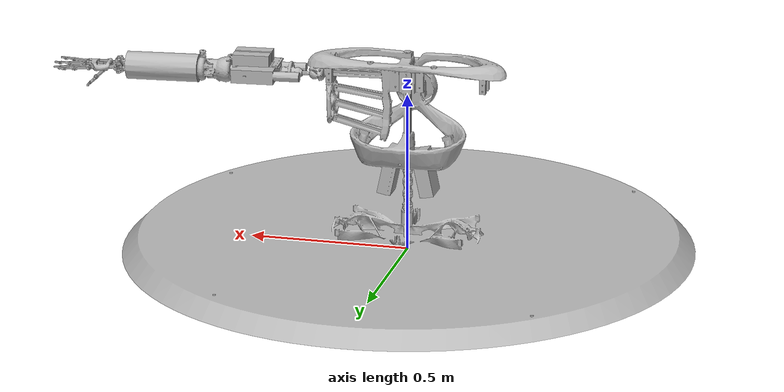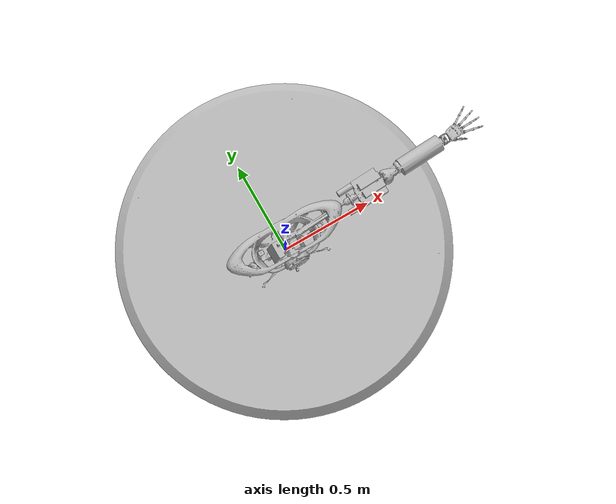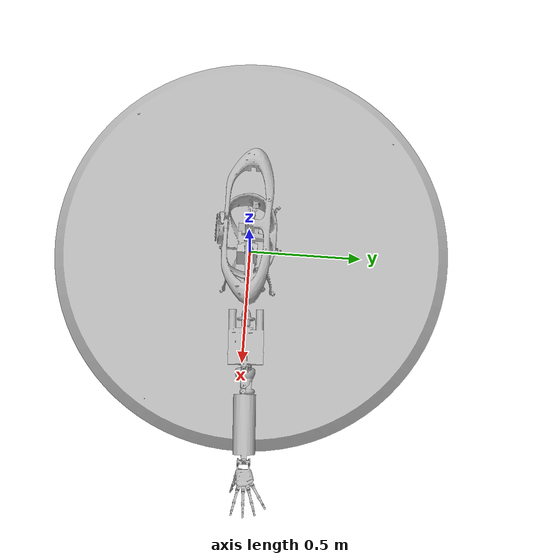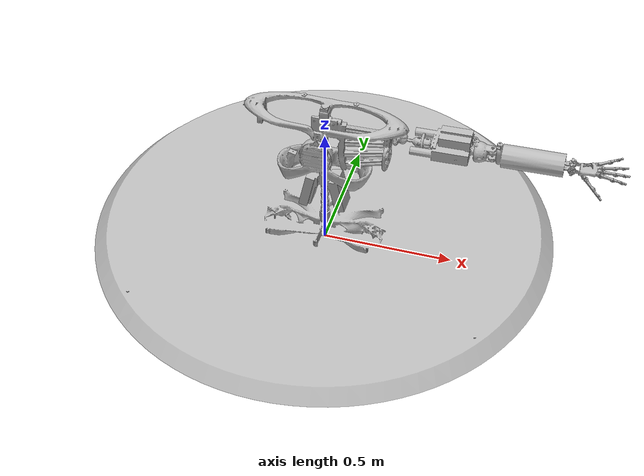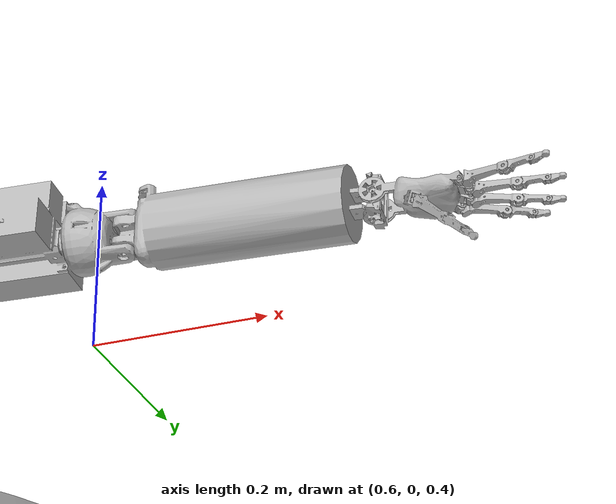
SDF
<?xml version="1.0" ?>
<sdf version="1.6">
	<model name="roboy_xylophone_left_arm">
		<link name="upper_arm_left">
			<self_collide>false</self_collide>
			<pose frame="">0.47525602631534186 0.01714193037585743 0.5581680840350569 0.0 -0.0 0.0</pose>
			<inertial>
				<pose frame="">0.0 0.0 0.0 0 0 0</pose>
				<mass>1.2824428697417236</mass>
				<inertia>
					<ixx>0.4024486697593224</ixx>
					<ixy>-0.010686402192530009</ixy>
					<ixz>-0.012264295959232901</ixz>
					<iyy>0.6959076882859703</iyy>
					<iyz>-0.3402753322906723</iyz>
					<izz>0.2979984162484978</izz>
				</inertia>
			</inertial>
			<collision name="upper_arm_left_collision">
				<geometry>
					<mesh>
						<uri>model://roboy_xylophone_left_arm/meshes/CAD/upper_arm_left.stl</uri>
						<scale>0.001 0.001 0.001</scale>
					</mesh>
				</geometry>
			</collision>
			<visual name="upper_arm_left_visual">
				<geometry>
					<mesh>
						<uri>model://roboy_xylophone_left_arm/meshes/CAD/upper_arm_left.stl</uri>
						<scale>0.001 0.001 0.001</scale>
					</mesh>
				</geometry>
			</visual>
		</link>
		<link name="torso">
			<self_collide>false</self_collide>
			<pose frame="">0.008583084223350608 -0.008164586655353396 0.39844861642463053 0.0 -0.0 0.0</pose>
			<inertial>
				<pose frame="">0.0 0.0 0.0 0 0 0</pose>
				<mass>17.35475770563241</mass>
				<inertia>
					<ixx>3.1867053233126024</ixx>
					<ixy>-0.0013339320204242078</ixy>
					<ixz>0.06576212150919633</ixz>
					<iyy>3.4213033758007674</iyy>
					<iyz>-0.07512681864475856</iyz>
					<izz>0.3313904450729579</izz>
				</inertia>
			</inertial>
			<collision name="torso_collision">
				<geometry>
					<mesh>
						<uri>model://roboy_xylophone_left_arm/meshes/CAD/torso.stl</uri>
						<scale>0.001 0.001 0.001</scale>
					</mesh>
				</geometry>
			</collision>
			<visual name="torso_visual">
				<geometry>
					<mesh>
						<uri>model://roboy_xylophone_left_arm/meshes/CAD/torso.stl</uri>
						<scale>0.001 0.001 0.001</scale>
					</mesh>
				</geometry>
			</visual>
		</link>
		<link name="base">
			<self_collide>false</self_collide>
			<pose frame="">-0.004997970345821523 0.0056731157257543545 0.024531453030641522 0.0 -0.0 0.0</pose>
			<inertial>
				<pose frame="">0.0 0.0 0.0 0 0 0</pose>
				<mass>1041.2293594077037</mass>
				<inertia>
					<ixx>194.34233377142357</ixx>
					<ixy>0.02954008126913404</ixy>
					<ixz>-0.1448651839771172</ixz>
					<iyy>194.3430419147966</iyy>
					<iyz>0.12760282012593194</iyz>
					<izz>386.9973235859432</izz>
				</inertia>
			</inertial>
			<collision name="base_collision">
				<geometry>
					<mesh>
						<uri>model://roboy_xylophone_left_arm/meshes/CAD/base.stl</uri>
						<scale>0.001 0.001 0.001</scale>
					</mesh>
				</geometry>
			</collision>
			<visual name="base_visual">
				<geometry>
					<mesh>
						<uri>model://roboy_xylophone_left_arm/meshes/CAD/base.stl</uri>
						<scale>0.001 0.001 0.001</scale>
					</mesh>
				</geometry>
			</visual>
		</link>
		<link name="lower_arm_left">
			<self_collide>false</self_collide>
			<pose frame="">0.7619449353323546 0.031932085134917 0.5426905147675795 0.0 -0.0 0.0</pose>
			<inertial>
				<pose frame="">0.0 0.0 0.0 0 0 0</pose>
				<mass>1.4920910719605724</mass>
				<inertia>
					<ixx>0.4423192092073822</ixx>
					<ixy>-0.03658549028896391</ixy>
					<ixz>-0.025851538585217118</ixz>
					<iyy>1.3138911133920037</iyy>
					<iyz>-0.6168796709660498</iyz>
					<izz>0.8759646937991964</izz>
				</inertia>
			</inertial>
			<collision name="lower_arm_left_collision">
				<geometry>
					<mesh>
						<uri>model://roboy_xylophone_left_arm/meshes/CAD/lower_arm_left.stl</uri>
						<scale>0.001 0.001 0.001</scale>
					</mesh>
				</geometry>
			</collision>
			<visual name="lower_arm_left_visual">
				<geometry>
					<mesh>
						<uri>model://roboy_xylophone_left_arm/meshes/CAD/lower_arm_left.stl</uri>
						<scale>0.001 0.001 0.001</scale>
					</mesh>
				</geometry>
			</visual>
		</link>
		<link name="sphere_link1">
			<self_collide>false</self_collide>
			<pose frame="">0.29218005222734217 0.0076909234120174945 0.5486137870423161 0.0 -0.0 0.0</pose>
			<inertial>
				<pose frame="">0.0 0.0 0.0 0 0 0</pose>
				<mass>0.046755519327953375</mass>
				<inertia>
					<ixx>0.014081079691620597</ixx>
					<ixy>-0.00010506593379475995</ixy>
					<ixz>-0.00019727774254638377</ixz>
					<iyy>0.018069794508113985</iyy>
					<iyz>-0.00749462944662583</iyz>
					<izz>0.004000220151190864</izz>
				</inertia>
			</inertial>
			<collision name="sphere_link1_collision">
				<geometry>
					<mesh>
						<uri>model://roboy_xylophone_left_arm/meshes/CAD/sphere_link1.stl</uri>
						<scale>0.001 0.001 0.001</scale>
					</mesh>
				</geometry>
			</collision>
			<visual name="sphere_link1_visual">
				<geometry>
					<mesh>
						<uri>model://roboy_xylophone_left_arm/meshes/CAD/sphere_link1.stl</uri>
						<scale>0.001 0.001 0.001</scale>
					</mesh>
				</geometry>
			</visual>
		</link>
		<link name="sphere_link2">
			<self_collide>false</self_collide>
			<pose frame="">0.2921800660285933 0.007690617219246413 0.5486137752945589 0.0 -0.0 0.0</pose>
			<inertial>
				<pose frame="">0.0 0.0 0.0 0 0 0</pose>
				<mass>0.031340208481721615</mass>
				<inertia>
					<ixx>0.00943723649341556</ixx>
					<ixy>-7.042286174839997e-05</ixy>
					<ixz>-0.00013222993537338276</ixz>
					<iyy>0.0121108711445115</iyy>
					<iyz>-0.005023647663244027</iyz>
					<izz>0.002680040477109837</izz>
				</inertia>
			</inertial>
			<collision name="sphere_link2_collision">
				<geometry>
					<mesh>
						<uri>model://roboy_xylophone_left_arm/meshes/CAD/sphere_link2.stl</uri>
						<scale>0.001 0.001 0.001</scale>
					</mesh>
				</geometry>
			</collision>
			<visual name="sphere_link2_visual">
				<geometry>
					<mesh>
						<uri>model://roboy_xylophone_left_arm/meshes/CAD/sphere_link2.stl</uri>
						<scale>0.001 0.001 0.001</scale>
					</mesh>
				</geometry>
			</visual>
		</link>
		<link name="palm">
			<self_collide>false</self_collide>
			<pose frame="">0.9626079064429947 0.04271864206551765 0.5360127824561958 0.0 -0.0 0.0</pose>
			<inertial>
				<pose frame="">0.0 0.0 0.0 0 0 0</pose>
				<mass>0.05102877375017898</mass>
				<inertia>
					<ixx>0.014776394482697809</ixx>
					<ixy>-0.0021020154222779197</ixy>
					<ixz>-0.001168138252668805</ixz>
					<iyy>0.06198446987524317</iyy>
					<iyz>-0.02632911368786829</iyz>
					<izz>0.04743399639231101</izz>
				</inertia>
			</inertial>
			<collision name="palm_collision">
				<geometry>
					<mesh>
						<uri>model://roboy_xylophone_left_arm/meshes/CAD/palm.stl</uri>
						<scale>0.001 0.001 0.001</scale>
					</mesh>
				</geometry>
			</collision>
			<visual name="palm_visual">
				<geometry>
					<mesh>
						<uri>model://roboy_xylophone_left_arm/meshes/CAD/palm.stl</uri>
						<scale>0.001 0.001 0.001</scale>
					</mesh>
				</geometry>
			</visual>
		</link>
		<link name="left_ring_limb0">
			<self_collide>false</self_collide>
			<pose frame="">1.0068023034187839 0.06303728926734664 0.5355918413333172 0.0 -0.0 0.0</pose>
			<inertial>
				<pose frame="">0.0 0.0 0.0 0 0 0</pose>
				<mass>0.0004269858811029714</mass>
				<inertia>
					<ixx>0.00012418849412834795</ixx>
					<ixy>-2.709848201591185e-05</ixy>
					<ixz>-1.441604468346543e-05</ixz>
					<iyy>0.0005553045943754497</iyy>
					<iyz>-0.00023024609765415525</iyz>
					<izz>0.0004345192999755118</izz>
				</inertia>
			</inertial>
			<collision name="left_ring_limb0_collision">
				<geometry>
					<mesh>
						<uri>model://roboy_xylophone_left_arm/meshes/CAD/left_ring_limb0.stl</uri>
						<scale>0.001 0.001 0.001</scale>
					</mesh>
				</geometry>
			</collision>
			<visual name="left_ring_limb0_visual">
				<geometry>
					<mesh>
						<uri>model://roboy_xylophone_left_arm/meshes/CAD/left_ring_limb0.stl</uri>
						<scale>0.001 0.001 0.001</scale>
					</mesh>
				</geometry>
			</visual>
		</link>
		<link name="left_ring_limb1">
			<self_collide>false</self_collide>
			<pose frame="">1.0302931098132073 0.0706307349392685 0.5353916530547788 0.0 -0.0 0.0</pose>
			<inertial>
				<pose frame="">0.0 0.0 0.0 0 0 0</pose>
				<mass>0.0038292090754036582</mass>
				<inertia>
					<ixx>0.0011168819796587256</ixx>
					<ixy>-0.0002789168345022406</ixy>
					<ixz>-0.00014479998692845813</ixz>
					<iyy>0.005163230482939555</iyy>
					<iyz>-0.0021122253482438276</iyz>
					<izz>0.004084799563734076</izz>
				</inertia>
			</inertial>
			<collision name="left_ring_limb1_collision">
				<geometry>
					<mesh>
						<uri>model://roboy_xylophone_left_arm/meshes/CAD/left_ring_limb1.stl</uri>
						<scale>0.001 0.001 0.001</scale>
					</mesh>
				</geometry>
			</collision>
			<visual name="left_ring_limb1_visual">
				<geometry>
					<mesh>
						<uri>model://roboy_xylophone_left_arm/meshes/CAD/left_ring_limb1.stl</uri>
						<scale>0.001 0.001 0.001</scale>
					</mesh>
				</geometry>
			</visual>
		</link>
		<link name="left_ring_limb2">
			<self_collide>false</self_collide>
			<pose frame="">1.0681116197721756 0.08284105678300478 0.5344000769659298 0.0 -0.0 0.0</pose>
			<inertial>
				<pose frame="">0.0 0.0 0.0 0 0 0</pose>
				<mass>0.0016247467295003562</mass>
				<inertia>
					<ixx>0.00047518477088978427</ixx>
					<ixy>-0.0001438090956765774</ixy>
					<ixz>-7.192976113661097e-05</ixz>
					<iyy>0.0023177736113809146</iyy>
					<iyz>-0.0009274092275717728</iyz>
					<izz>0.0018649377413099285</izz>
				</inertia>
			</inertial>
			<collision name="left_ring_limb2_collision">
				<geometry>
					<mesh>
						<uri>model://roboy_xylophone_left_arm/meshes/CAD/left_ring_limb2.stl</uri>
						<scale>0.001 0.001 0.001</scale>
					</mesh>
				</geometry>
			</collision>
			<visual name="left_ring_limb2_visual">
				<geometry>
					<mesh>
						<uri>model://roboy_xylophone_left_arm/meshes/CAD/left_ring_limb2.stl</uri>
						<scale>0.001 0.001 0.001</scale>
					</mesh>
				</geometry>
			</visual>
		</link>
		<link name="left_ring_limb3">
			<self_collide>false</self_collide>
			<pose frame="">1.0939321890626381 0.09118259846387071 0.5339315315998833 0.0 -0.0 0.0</pose>
			<inertial>
				<pose frame="">0.0 0.0 0.0 0 0 0</pose>
				<mass>0.0006943750323732433</mass>
				<inertia>
					<ixx>0.000203734688523581</ixx>
					<ixy>-6.926959903474457e-05</ixy>
					<ixz>-3.380635551602863e-05</ixz>
					<iyy>0.0010289317527725967</iyy>
					<iyz>-0.00040557556867734754</iyz>
					<izz>0.0008367527553715059</izz>
				</inertia>
			</inertial>
			<collision name="left_ring_limb3_collision">
				<geometry>
					<mesh>
						<uri>model://roboy_xylophone_left_arm/meshes/CAD/left_ring_limb3.stl</uri>
						<scale>0.001 0.001 0.001</scale>
					</mesh>
				</geometry>
			</collision>
			<visual name="left_ring_limb3_visual">
				<geometry>
					<mesh>
						<uri>model://roboy_xylophone_left_arm/meshes/CAD/left_ring_limb3.stl</uri>
						<scale>0.001 0.001 0.001</scale>
					</mesh>
				</geometry>
			</visual>
		</link>
		<link name="left_little_limb0">
			<self_collide>false</self_collide>
			<pose frame="">0.9915711969253908 0.07686495045419905 0.5355814407224877 0.0 -0.0 0.0</pose>
			<inertial>
				<pose frame="">0.0 0.0 0.0 0 0 0</pose>
				<mass>0.00042703787627861614</mass>
				<inertia>
					<ixx>0.00012502456968684812</ixx>
					<ixy>-3.254654243655004e-05</ixy>
					<ixz>-1.7580229583389786e-05</ixz>
					<iyy>0.0005423699781598603</iyy>
					<iyz>-0.00022678609878726378</iyz>
					<izz>0.00042240033179530203</izz>
				</inertia>
			</inertial>
			<collision name="left_little_limb0_collision">
				<geometry>
					<mesh>
						<uri>model://roboy_xylophone_left_arm/meshes/CAD/left_little_limb0.stl</uri>
						<scale>0.001 0.001 0.001</scale>
					</mesh>
				</geometry>
			</collision>
			<visual name="left_little_limb0_visual">
				<geometry>
					<mesh>
						<uri>model://roboy_xylophone_left_arm/meshes/CAD/left_little_limb0.stl</uri>
						<scale>0.001 0.001 0.001</scale>
					</mesh>
				</geometry>
			</visual>
		</link>
		<link name="left_little_limb1">
			<self_collide>false</self_collide>
			<pose frame="">1.0122289648634446 0.09025770583818864 0.537427373697344 0.0 -0.0 0.0</pose>
			<inertial>
				<pose frame="">0.0 0.0 0.0 0 0 0</pose>
				<mass>0.0038292284334786432</mass>
				<inertia>
					<ixx>0.0011375273954238572</ixx>
					<ixy>-0.00035025310774852426</ixy>
					<ixz>-0.00018578143001576035</ixz>
					<iyy>0.005030154700862526</iyy>
					<iyz>-0.0020831559607708394</iyz>
					<izz>0.003955622004789977</izz>
				</inertia>
			</inertial>
			<collision name="left_little_limb1_collision">
				<geometry>
					<mesh>
						<uri>model://roboy_xylophone_left_arm/meshes/CAD/left_little_limb1.stl</uri>
						<scale>0.001 0.001 0.001</scale>
					</mesh>
				</geometry>
			</collision>
			<visual name="left_little_limb1_visual">
				<geometry>
					<mesh>
						<uri>model://roboy_xylophone_left_arm/meshes/CAD/left_little_limb1.stl</uri>
						<scale>0.001 0.001 0.001</scale>
					</mesh>
				</geometry>
			</visual>
		</link>
		<link name="left_little_limb2">
			<self_collide>false</self_collide>
			<pose frame="">1.0455331837456125 0.1118410793619053 0.5397309632883072 0.0 -0.0 0.0</pose>
			<inertial>
				<pose frame="">0.0 0.0 0.0 0 0 0</pose>
				<mass>0.0016247445922669634</mass>
				<inertia>
					<ixx>0.0004936933397918134</ixx>
					<ixy>-0.000190057534949078</ixy>
					<ixz>-9.80863690738701e-05</ixz>
					<iyy>0.0022495058127237934</iyy>
					<iyz>-0.0009168697689705924</iyz>
					<izz>0.001796568866486647</izz>
				</inertia>
			</inertial>
			<collision name="left_little_limb2_collision">
				<geometry>
					<mesh>
						<uri>model://roboy_xylophone_left_arm/meshes/CAD/left_little_limb2.stl</uri>
						<scale>0.001 0.001 0.001</scale>
					</mesh>
				</geometry>
			</collision>
			<visual name="left_little_limb2_visual">
				<geometry>
					<mesh>
						<uri>model://roboy_xylophone_left_arm/meshes/CAD/left_little_limb2.stl</uri>
						<scale>0.001 0.001 0.001</scale>
					</mesh>
				</geometry>
			</visual>
		</link>
		<link name="left_little_limb3">
			<self_collide>false</self_collide>
			<pose frame="">1.068257178664381 0.1265703329635954 0.5415116271497218 0.0 -0.0 0.0</pose>
			<inertial>
				<pose frame="">0.0 0.0 0.0 0 0 0</pose>
				<mass>0.0006943752665252096</mass>
				<inertia>
					<ixx>0.00021475133731084842</ixx>
					<ixy>-9.389749091316881e-05</ixy>
					<ixz>-4.759402591107799e-05</ixz>
					<iyy>0.0009960400043925691</iyy>
					<iyz>-0.000401680936685509</iyz>
					<izz>0.0008035555816968124</izz>
				</inertia>
			</inertial>
			<collision name="left_little_limb3_collision">
				<geometry>
					<mesh>
						<uri>model://roboy_xylophone_left_arm/meshes/CAD/left_little_limb3.stl</uri>
						<scale>0.001 0.001 0.001</scale>
					</mesh>
				</geometry>
			</collision>
			<visual name="left_little_limb3_visual">
				<geometry>
					<mesh>
						<uri>model://roboy_xylophone_left_arm/meshes/CAD/left_little_limb3.stl</uri>
						<scale>0.001 0.001 0.001</scale>
					</mesh>
				</geometry>
			</visual>
		</link>
		<link name="left_thumb_limb0">
			<self_collide>false</self_collide>
			<pose frame="">0.9601519265689278 0.016403629088279987 0.5192746598138529 0.0 -0.0 0.0</pose>
			<inertial>
				<pose frame="">0.0 0.0 0.0 0 0 0</pose>
				<mass>0.0004270862128059</mass>
				<inertia>
					<ixx>0.00011528446751085151</ixx>
					<ixy>-6.725922390112424e-06</ixy>
					<ixz>-3.6374291118736894e-06</ixz>
					<iyy>0.0005088968701657031</iyy>
					<iyz>-0.00021293851969644796</iyz>
					<izz>0.000393847893182803</izz>
				</inertia>
			</inertial>
			<collision name="left_thumb_limb0_collision">
				<geometry>
					<mesh>
						<uri>model://roboy_xylophone_left_arm/meshes/CAD/left_thumb_limb0.stl</uri>
						<scale>0.001 0.001 0.001</scale>
					</mesh>
				</geometry>
			</collision>
			<visual name="left_thumb_limb0_visual">
				<geometry>
					<mesh>
						<uri>model://roboy_xylophone_left_arm/meshes/CAD/left_thumb_limb0.stl</uri>
						<scale>0.001 0.001 0.001</scale>
					</mesh>
				</geometry>
			</visual>
		</link>
		<link name="left_thumb_limb1">
			<self_collide>false</self_collide>
			<pose frame="">0.9769352302083069 0.011047409885705944 0.502020541101273 0.0 -0.0 0.0</pose>
			<inertial>
				<pose frame="">0.0 0.0 0.0 0 0 0</pose>
				<mass>0.0038295143000693812</mass>
				<inertia>
					<ixx>0.0009661636023444129</ixx>
					<ixy>-4.119922346389421e-05</ixy>
					<ixz>-2.1374715136827864e-05</ixz>
					<iyy>0.004620964429977562</iyy>
					<iyz>-0.0018777230734262418</iyz>
					<izz>0.0036558909870144035</izz>
				</inertia>
			</inertial>
			<collision name="left_thumb_limb1_collision">
				<geometry>
					<mesh>
						<uri>model://roboy_xylophone_left_arm/meshes/CAD/left_thumb_limb1.stl</uri>
						<scale>0.001 0.001 0.001</scale>
					</mesh>
				</geometry>
			</collision>
			<visual name="left_thumb_limb1_visual">
				<geometry>
					<mesh>
						<uri>model://roboy_xylophone_left_arm/meshes/CAD/left_thumb_limb1.stl</uri>
						<scale>0.001 0.001 0.001</scale>
					</mesh>
				</geometry>
			</visual>
		</link>
		<link name="left_thumb_limb2">
			<self_collide>false</self_collide>
			<pose frame="">1.00413055634803 0.00312432180084319 0.4741280799251096 0.0 -0.0 0.0</pose>
			<inertial>
				<pose frame="">0.0 0.0 0.0 0 0 0</pose>
				<mass>0.0016247804077038751</mass>
				<inertia>
					<ixx>0.00036537107230390426</ixx>
					<ixy>-5.071629281934768e-06</ixy>
					<ixz>-2.4348622251904633e-06</ixz>
					<iyy>0.0020036425906275303</iyy>
					<iyz>-0.0007734630430786623</iyz>
					<izz>0.001638341732245119</izz>
				</inertia>
			</inertial>
			<collision name="left_thumb_limb2_collision">
				<geometry>
					<mesh>
						<uri>model://roboy_xylophone_left_arm/meshes/CAD/left_thumb_limb2.stl</uri>
						<scale>0.001 0.001 0.001</scale>
					</mesh>
				</geometry>
			</collision>
			<visual name="left_thumb_limb2_visual">
				<geometry>
					<mesh>
						<uri>model://roboy_xylophone_left_arm/meshes/CAD/left_thumb_limb2.stl</uri>
						<scale>0.001 0.001 0.001</scale>
					</mesh>
				</geometry>
			</visual>
		</link>
		<link name="left_thumb_limb3">
			<self_collide>false</self_collide>
			<pose frame="">1.0225933864067416 -0.002459206566184596 0.4550370013320713 0.0 -0.0 0.0</pose>
			<inertial>
				<pose frame="">0.0 0.0 0.0 0 0 0</pose>
				<mass>0.0006943654263361664</mass>
				<inertia>
					<ixx>0.0001437980823801141</ixx>
					<ixy>1.750553625090523e-06</ixy>
					<ixz>7.720026121848689e-07</ixz>
					<iyy>0.0008698981319045495</iyy>
					<iyz>-0.0003230890783553004</iyz>
					<izz>0.000726116822449548</izz>
				</inertia>
			</inertial>
			<collision name="left_thumb_limb3_collision">
				<geometry>
					<mesh>
						<uri>model://roboy_xylophone_left_arm/meshes/CAD/left_thumb_limb3.stl</uri>
						<scale>0.001 0.001 0.001</scale>
					</mesh>
				</geometry>
			</collision>
			<visual name="left_thumb_limb3_visual">
				<geometry>
					<mesh>
						<uri>model://roboy_xylophone_left_arm/meshes/CAD/left_thumb_limb3.stl</uri>
						<scale>0.001 0.001 0.001</scale>
					</mesh>
				</geometry>
			</visual>
		</link>
		<link name="left_index_limb0">
			<self_collide>false</self_collide>
			<pose frame="">1.0087847639965182 0.02434136978806782 0.536882150509613 0.0 -0.0 0.0</pose>
			<inertial>
				<pose frame="">0.0 0.0 0.0 0 0 0</pose>
				<mass>0.00042702903824236283</mass>
				<inertia>
					<ixx>0.00012334822343690807</ixx>
					<ixy>-1.0486251068228715e-05</ixy>
					<ixz>-5.580423647836392e-06</ixz>
					<iyy>0.000557657886535186</iyy>
					<iyz>-0.00023127859811554555</iyz>
					<izz>0.00043482566609083446</izz>
				</inertia>
			</inertial>
			<collision name="left_index_limb0_collision">
				<geometry>
					<mesh>
						<uri>model://roboy_xylophone_left_arm/meshes/CAD/left_index_limb0.stl</uri>
						<scale>0.001 0.001 0.001</scale>
					</mesh>
				</geometry>
			</collision>
			<visual name="left_index_limb0_visual">
				<geometry>
					<mesh>
						<uri>model://roboy_xylophone_left_arm/meshes/CAD/left_index_limb0.stl</uri>
						<scale>0.001 0.001 0.001</scale>
					</mesh>
				</geometry>
			</visual>
		</link>
		<link name="left_index_limb1">
			<self_collide>false</self_collide>
			<pose frame="">1.0329284637238199 0.019187487568333373 0.5371075209870503 0.0 -0.0 0.0</pose>
			<inertial>
				<pose frame="">0.0 0.0 0.0 0 0 0</pose>
				<mass>0.003829163575406215</mass>
				<inertia>
					<ixx>0.0011061765748783682</ixx>
					<ixy>-7.570734588664697e-05</ixy>
					<ixz>-3.946036916616936e-05</ixz>
					<iyy>0.005191082266788811</iyy>
					<iyz>-0.002124404703480068</iyz>
					<izz>0.00408787855438196</izz>
				</inertia>
			</inertial>
			<collision name="left_index_limb1_collision">
				<geometry>
					<mesh>
						<uri>model://roboy_xylophone_left_arm/meshes/CAD/left_index_limb1.stl</uri>
						<scale>0.001 0.001 0.001</scale>
					</mesh>
				</geometry>
			</collision>
			<visual name="left_index_limb1_visual">
				<geometry>
					<mesh>
						<uri>model://roboy_xylophone_left_arm/meshes/CAD/left_index_limb1.stl</uri>
						<scale>0.001 0.001 0.001</scale>
					</mesh>
				</geometry>
			</visual>
		</link>
		<link name="left_index_limb2">
			<self_collide>false</self_collide>
			<pose frame="">1.0717987851280548 0.010862288046543829 0.5368008284303474 0.0 -0.0 0.0</pose>
			<inertial>
				<pose frame="">0.0 0.0 0.0 0 0 0</pose>
				<mass>0.0016247462665498248</mass>
				<inertia>
					<ixx>0.0004683966783558678</ixx>
					<ixy>-1.888404907614901e-05</ixy>
					<ixz>-9.471944202820483e-06</ixz>
					<iyy>0.002334779064264812</iyy>
					<iyz>-0.0009347938463231611</iyz>
					<izz>0.0018667981954120234</izz>
				</inertia>
			</inertial>
			<collision name="left_index_limb2_collision">
				<geometry>
					<mesh>
						<uri>model://roboy_xylophone_left_arm/meshes/CAD/left_index_limb2.stl</uri>
						<scale>0.001 0.001 0.001</scale>
					</mesh>
				</geometry>
			</collision>
			<visual name="left_index_limb2_visual">
				<geometry>
					<mesh>
						<uri>model://roboy_xylophone_left_arm/meshes/CAD/left_index_limb2.stl</uri>
						<scale>0.001 0.001 0.001</scale>
					</mesh>
				</geometry>
			</visual>
		</link>
		<link name="left_index_limb3">
			<self_collide>false</self_collide>
			<pose frame="">1.0983373525120592 0.005187182235922041 0.5367997861225197 0.0 -0.0 0.0</pose>
			<inertial>
				<pose frame="">0.0 0.0 0.0 0 0 0</pose>
				<mass>0.0006943756104180356</mass>
				<inertia>
					<ixx>0.0002001115613975528</ixx>
					<ixy>-3.9510189003878855e-06</ixy>
					<ixz>-1.9330416972287704e-06</ixz>
					<iyy>0.0010377722640280173</iyy>
					<iyz>-0.0004093970804502319</iyz>
					<izz>0.000837704643968984</izz>
				</inertia>
			</inertial>
			<collision name="left_index_limb3_collision">
				<geometry>
					<mesh>
						<uri>model://roboy_xylophone_left_arm/meshes/CAD/left_index_limb3.stl</uri>
						<scale>0.001 0.001 0.001</scale>
					</mesh>
				</geometry>
			</collision>
			<visual name="left_index_limb3_visual">
				<geometry>
					<mesh>
						<uri>model://roboy_xylophone_left_arm/meshes/CAD/left_index_limb3.stl</uri>
						<scale>0.001 0.001 0.001</scale>
					</mesh>
				</geometry>
			</visual>
		</link>
		<link name="left_middle_limb0">
			<self_collide>false</self_collide>
			<pose frame="">1.0129745214747214 0.044448733671160916 0.5360275848363489 0.0 -0.0 0.0</pose>
			<inertial>
				<pose frame="">0.0 0.0 0.0 0 0 0</pose>
				<mass>0.00042699407928456685</mass>
				<inertia>
					<ixx>0.00012353733093586338</ixx>
					<ixy>-1.9225491703240762e-05</ixy>
					<ixz>-1.0173376105823534e-05</ixz>
					<iyy>0.0005608375656969448</iyy>
					<iyz>-0.00023185054924022461</iyz>
					<izz>0.00043899762091413646</izz>
				</inertia>
			</inertial>
			<collision name="left_middle_limb0_collision">
				<geometry>
					<mesh>
						<uri>model://roboy_xylophone_left_arm/meshes/CAD/left_middle_limb0.stl</uri>
						<scale>0.001 0.001 0.001</scale>
					</mesh>
				</geometry>
			</collision>
			<visual name="left_middle_limb0_visual">
				<geometry>
					<mesh>
						<uri>model://roboy_xylophone_left_arm/meshes/CAD/left_middle_limb0.stl</uri>
						<scale>0.001 0.001 0.001</scale>
					</mesh>
				</geometry>
			</visual>
		</link>
		<link name="left_middle_limb1">
			<self_collide>false</self_collide>
			<pose frame="">1.0376308356018205 0.04571040312233961 0.5360089971713634 0.0 -0.0 0.0</pose>
			<inertial>
				<pose frame="">0.0 0.0 0.0 0 0 0</pose>
				<mass>0.0038291840096795434</mass>
				<inertia>
					<ixx>0.0011082225709966435</ixx>
					<ixy>-0.00018166628219492013</ixy>
					<ixz>-9.38195185997166e-05</ixz>
					<iyy>0.005223915864257151</iyy>
					<iyz>-0.002129713897903479</iyz>
					<izz>0.004131774570824745</izz>
				</inertia>
			</inertial>
			<collision name="left_middle_limb1_collision">
				<geometry>
					<mesh>
						<uri>model://roboy_xylophone_left_arm/meshes/CAD/left_middle_limb1.stl</uri>
						<scale>0.001 0.001 0.001</scale>
					</mesh>
				</geometry>
			</collision>
			<visual name="left_middle_limb1_visual">
				<geometry>
					<mesh>
						<uri>model://roboy_xylophone_left_arm/meshes/CAD/left_middle_limb1.stl</uri>
						<scale>0.001 0.001 0.001</scale>
					</mesh>
				</geometry>
			</visual>
		</link>
		<link name="left_middle_limb2">
			<self_collide>false</self_collide>
			<pose frame="">1.0773269357506658 0.04772053368701771 0.5353097915107364 0.0 -0.0 0.0</pose>
			<inertial>
				<pose frame="">0.0 0.0 0.0 0 0 0</pose>
				<mass>0.0016247465206609597</mass>
				<inertia>
					<ixx>0.00046930136098802917</ixx>
					<ixy>-8.353742243873801e-05</ixy>
					<ixz>-4.150494665082401e-05</ixz>
					<iyy>0.0023514915303585564</iyy>
					<iyz>-0.0009370042085322754</iyz>
					<izz>0.0018896100007785217</izz>
				</inertia>
			</inertial>
			<collision name="left_middle_limb2_collision">
				<geometry>
					<mesh>
						<uri>model://roboy_xylophone_left_arm/meshes/CAD/left_middle_limb2.stl</uri>
						<scale>0.001 0.001 0.001</scale>
					</mesh>
				</geometry>
			</collision>
			<visual name="left_middle_limb2_visual">
				<geometry>
					<mesh>
						<uri>model://roboy_xylophone_left_arm/meshes/CAD/left_middle_limb2.stl</uri>
						<scale>0.001 0.001 0.001</scale>
					</mesh>
				</geometry>
			</visual>
		</link>
		<link name="left_middle_limb3">
			<self_collide>false</self_collide>
			<pose frame="">1.1044291123310337 0.049099873019318514 0.5350408202558525 0.0 -0.0 0.0</pose>
			<inertial>
				<pose frame="">0.0 0.0 0.0 0 0 0</pose>
				<mass>0.0006943751814592537</mass>
				<inertia>
					<ixx>0.00020045660091330594</ixx>
					<ixy>-3.765545282335029e-05</ixy>
					<ixz>-1.8241641526087604e-05</ixz>
					<iyy>0.0010457811099865231</iyy>
					<iyz>-0.0004103183404337262</iyz>
					<izz>0.0008486771092037282</izz>
				</inertia>
			</inertial>
			<collision name="left_middle_limb3_collision">
				<geometry>
					<mesh>
						<uri>model://roboy_xylophone_left_arm/meshes/CAD/left_middle_limb3.stl</uri>
						<scale>0.001 0.001 0.001</scale>
					</mesh>
				</geometry>
			</collision>
			<visual name="left_middle_limb3_visual">
				<geometry>
					<mesh>
						<uri>model://roboy_xylophone_left_arm/meshes/CAD/left_middle_limb3.stl</uri>
						<scale>0.001 0.001 0.001</scale>
					</mesh>
				</geometry>
			</visual>
		</link>
		<link name="wrist_1">
			<self_collide>false</self_collide>
			<pose frame="">0.9091720008258307 0.03899238887857568 0.5393955896338966 0.0 -0.0 0.0</pose>
			<inertial>
				<pose frame="">0.0 0.0 0.0 0 0 0</pose>
				<mass>0.012778030943033307</mass>
				<inertia>
					<ixx>0.003742607563102795</ixx>
					<ixy>-0.00045289746752872874</ixy>
					<ixz>-0.0002687841836628671</ixz>
					<iyy>0.014283530580867034</iyy>
					<iyz>-0.006266485286515719</iyz>
					<izz>0.010584301525511425</izz>
				</inertia>
			</inertial>
			<collision name="wrist_1_collision">
				<geometry>
					<mesh>
						<uri>model://roboy_xylophone_left_arm/meshes/CAD/wrist_1.stl</uri>
						<scale>0.001 0.001 0.001</scale>
					</mesh>
				</geometry>
			</collision>
			<visual name="wrist_1_visual">
				<geometry>
					<mesh>
						<uri>model://roboy_xylophone_left_arm/meshes/CAD/wrist_1.stl</uri>
						<scale>0.001 0.001 0.001</scale>
					</mesh>
				</geometry>
			</visual>
		</link>
		<joint name="sphere_axis0" type="revolute">
			<parent>torso</parent>
			<child>sphere_link1</child>
			<pose frame="">3.9283447250682e-09 -1.669784760338633e-07 -3.766154485163043e-08 0 0 0</pose>
			<axis>
				<xyz>0.9986354432836129 0.050744296328168334 -0.012339684270769953</xyz>
				<limit>
					<lower>-3.141592653589793</lower>
					<upper>3.141592653589793</upper>
				</limit>
				<use_parent_model_frame>0</use_parent_model_frame>
			</axis>
		</joint>
		<joint name="sphere_axis1" type="revolute">
			<parent>sphere_link1</parent>
			<child>sphere_link2</child>
			<pose frame="">-9.872906652219626e-09 1.392142950262798e-07 -2.5913787808917733e-08 0 0 0</pose>
			<axis>
				<xyz>-0.05101049431667491 0.9984488883025682 -0.022310242422111142</xyz>
				<limit>
					<lower>-3.141592653589793</lower>
					<upper>3.141592653589793</upper>
				</limit>
				<use_parent_model_frame>0</use_parent_model_frame>
			</axis>
		</joint>
		<joint name="sphere_axis2" type="revolute">
			<parent>sphere_link2</parent>
			<child>upper_arm_left</child>
			<pose frame="">-0.1830759701026465 -0.009451175058169585 -0.00955433462935261 0 0 0</pose>
			<axis>
				<xyz>0.9986354432836148 0.05074429632816839 -0.012339684270770136</xyz>
				<limit>
					<lower>-3.141592653589793</lower>
					<upper>3.141592653589793</upper>
				</limit>
				<use_parent_model_frame>0</use_parent_model_frame>
			</axis>
		</joint>
		<joint name="joint_hip" type="revolute">
			<parent>base</parent>
			<child>torso</child>
			<pose frame="">-0.0085830842233506 0.009686930156379774 -0.31521144293297654 0 0 0</pose>
			<axis>
				<xyz>-2.3609670781633625e-15 -1.1366942706288076e-14 -0.9999999999999987</xyz>
				<limit>
					<lower>-0.2617993877991494</lower>
					<upper>0.2617993877991494</upper>
				</limit>
				<use_parent_model_frame>0</use_parent_model_frame>
			</axis>
		</joint>
		<joint name="left_joint0_ring" type="revolute">
			<parent>left_ring_limb0</parent>
			<child>left_ring_limb1</child>
			<pose frame="">-0.02414878655864385 -0.0077414758068169226 0.002966067141780826 0 0 0</pose>
			<axis>
				<xyz>-0.44489424472796496 -0.12285256489810209 0.8871168797322637</xyz>
				<limit>
					<lower>-0.3141592653589793</lower>
					<upper>0.3141592653589793</upper>
				</limit>
				<use_parent_model_frame>0</use_parent_model_frame>
			</axis>
		</joint>
		<joint name="left_joint1_ring" type="revolute">
			<parent>left_ring_limb1</parent>
			<child>left_ring_limb2</child>
			<pose frame="">-0.01033149614939063 -0.009145888621801976 -0.0009126379629992698 0 0 0</pose>
			<axis>
				<xyz>-0.3077076366098354 0.9512127947894418 -0.02258825803070381</xyz>
				<limit>
					<lower>0.0</lower>
					<upper>1.9198621771937625</upper>
				</limit>
				<use_parent_model_frame>0</use_parent_model_frame>
			</axis>
		</joint>
		<joint name="left_joint2_ring" type="revolute">
			<parent>left_ring_limb2</parent>
			<child>left_ring_limb3</child>
			<pose frame="">-0.006372210742397187 -0.006275666569672342 -0.0003872308663373758 0 0 0</pose>
			<axis>
				<xyz>-0.3077076366098354 0.9512127947894418 -0.02258825803070381</xyz>
				<limit>
					<lower>0.0</lower>
					<upper>1.2217304763960306</upper>
				</limit>
				<use_parent_model_frame>0</use_parent_model_frame>
			</axis>
		</joint>
		<joint name="left_palm_ring" type="revolute">
			<parent>palm</parent>
			<child>left_ring_limb0</child>
			<pose frame="">0.0029845098445355233 -0.0069135684011202335 0.0002739401592762647 0 0 0</pose>
			<axis>
				<xyz>0.30770763660983436 -0.9512127947894438 0.022588258030706132</xyz>
				<limit>
					<lower>-1.2217304763960306</lower>
					<upper>0.3490658503988659</upper>
				</limit>
				<use_parent_model_frame>0</use_parent_model_frame>
			</axis>
		</joint>
		<joint name="left_palm_index" type="revolute">
			<parent>palm</parent>
			<child>left_index_limb0</child>
			<pose frame="">-0.0008718289965813142 -0.007472054955967234 0.00042997921963127794 0 0 0</pose>
			<axis>
				<xyz>-0.20893141716706198 -0.977039717421415 0.04172593320302535</xyz>
				<limit>
					<lower>-1.2217304763960306</lower>
					<upper>0.3490658503988659</upper>
				</limit>
				<use_parent_model_frame>0</use_parent_model_frame>
			</axis>
		</joint>
		<joint name="left_palm_thumb" type="revolute">
			<parent>palm</parent>
			<child>left_thumb_limb0</child>
			<pose frame="">-0.002485196574752848 0.0019544794017728176 -0.006839225286532766 0 0 0</pose>
			<axis>
				<xyz>-0.4014681415078008 0.3048418781508846 -0.8636519904913753</xyz>
				<limit>
					<lower>-1.2217304763960306</lower>
					<upper>0.3490658503988659</upper>
				</limit>
				<use_parent_model_frame>0</use_parent_model_frame>
			</axis>
		</joint>
		<joint name="left_palm_little" type="revolute">
			<parent>palm</parent>
			<child>left_little_limb0</child>
			<pose frame="">0.004662125966214745 -0.005913945715452833 0.00024123091023497522 0 0 0</pose>
			<axis>
				<xyz>-0.5433151727055905 0.8394650617135525 -0.010345688482170427</xyz>
				<limit>
					<lower>-1.2217304763960306</lower>
					<upper>0.3490658503988659</upper>
				</limit>
				<use_parent_model_frame>0</use_parent_model_frame>
			</axis>
		</joint>
		<joint name="left_palm_middle" type="revolute">
			<parent>palm</parent>
			<child>left_middle_limb0</child>
			<pose frame="">0.00045429625471399504 0.005029961949323401 -5.666473076459511e-05 0 0 0</pose>
			<axis>
				<xyz>0.0511303335900308 -0.9981369478539025 0.03329147512330995</xyz>
				<limit>
					<lower>-1.2217304763960306</lower>
					<upper>0.3490658503988659</upper>
				</limit>
				<use_parent_model_frame>0</use_parent_model_frame>
			</axis>
		</joint>
		<joint name="left_wrist_0" type="revolute">
			<parent>lower_arm_left</parent>
			<child>wrist_1</child>
			<pose frame="">0.001089518641924343 -0.0002749282454624114 -0.009919060928152632 0 0 0</pose>
			<axis>
				<xyz>-0.03524123258776669 -0.03511757010586418 -0.998761639128954</xyz>
				<limit>
					<lower>-0.5235987755982988</lower>
					<upper>0.5235987755982988</upper>
				</limit>
				<use_parent_model_frame>0</use_parent_model_frame>
			</axis>
		</joint>
		<joint name="left_wrist_1" type="revolute">
			<parent>wrist_1</parent>
			<child>palm</child>
			<pose frame="">-0.05108157318899629 -0.02109984352751114 0.004533344452076236 0 0 0</pose>
			<axis>
				<xyz>-0.05113033359003288 0.9981369478538951 -0.03329147512330832</xyz>
				<limit>
					<lower>-0.5235987755982988</lower>
					<upper>0.5235987755982988</upper>
				</limit>
				<use_parent_model_frame>0</use_parent_model_frame>
			</axis>
		</joint>
		<joint name="elbow_left" type="revolute">
			<parent>upper_arm_left</parent>
			<child>lower_arm_left</child>
			<pose frame="">-0.14040782437443405 -0.012906136303689307 -0.015728471472726754 0 0 0</pose>
			<axis>
				<xyz>-0.011188426489530806 -0.022909252225328334 -0.9996749398055218</xyz>
				<limit>
					<lower>-1.5707963267948966</lower>
					<upper>0.0</upper>
				</limit>
				<use_parent_model_frame>0</use_parent_model_frame>
			</axis>
		</joint>
		<joint name="left_joint0_little" type="revolute">
			<parent>left_little_limb0</parent>
			<child>left_little_limb1</child>
			<pose frame="">-0.021427230484583646 -0.01385752647978344 0.0008558552284917198 0 0 0</pose>
			<axis>
				<xyz>-0.45224157248391117 -0.28227111439747177 0.846049985576561</xyz>
				<limit>
					<lower>-0.3141592653589793</lower>
					<upper>0.3141592653589793</upper>
				</limit>
				<use_parent_model_frame>0</use_parent_model_frame>
			</axis>
		</joint>
		<joint name="left_joint1_little" type="revolute">
			<parent>left_little_limb1</parent>
			<child>left_little_limb2</child>
			<pose frame="">-0.007507021424269454 -0.011435391445259561 -0.002024061418119487 0 0 0</pose>
			<axis>
				<xyz>-0.5433151727055808 0.8394650617135488 -0.010345688482164859</xyz>
				<limit>
					<lower>0.0</lower>
					<upper>1.9198621771937625</upper>
				</limit>
				<use_parent_model_frame>0</use_parent_model_frame>
			</axis>
		</joint>
		<joint name="left_joint2_little" type="revolute">
			<parent>left_little_limb2</parent>
			<child>left_little_limb3</child>
			<pose frame="">-0.00447547275820682 -0.007675022430986473 -0.0010968746131286623 0 0 0</pose>
			<axis>
				<xyz>-0.5433151727055808 0.8394650617135488 -0.010345688482164859</xyz>
				<limit>
					<lower>0.0</lower>
					<upper>1.2217304763960306</upper>
				</limit>
				<use_parent_model_frame>0</use_parent_model_frame>
			</axis>
		</joint>
		<joint name="left_joint0_thumb" type="revolute">
			<parent>left_thumb_limb0</parent>
			<child>left_thumb_limb1</child>
			<pose frame="">-0.01853763543391608 0.0031132501029943363 0.017277637975535498 0 0 0</pose>
			<axis>
				<xyz>-0.7600487603644841 -0.6370448050736126 0.12845154026774852</xyz>
				<limit>
					<lower>-0.3141592653589793</lower>
					<upper>0.3141592653589793</upper>
				</limit>
				<use_parent_model_frame>0</use_parent_model_frame>
			</axis>
		</joint>
		<joint name="left_joint1_thumb" type="revolute">
			<parent>left_thumb_limb1</parent>
			<child>left_thumb_limb2</child>
			<pose frame="">-0.010934857400673223 0.006444661535780296 0.00548695865098118 0 0 0</pose>
			<axis>
				<xyz>0.5397351066511744 -0.508701815653092 0.6707521728623019</xyz>
				<limit>
					<lower>0.0</lower>
					<upper>1.9198621771937625</upper>
				</limit>
				<use_parent_model_frame>0</use_parent_model_frame>
			</axis>
		</joint>
		<joint name="left_joint2_thumb" type="revolute">
			<parent>left_thumb_limb2</parent>
			<child>left_thumb_limb3</child>
			<pose frame="">-0.007285905993485216 0.0041923226173764035 0.0030788528559568106 0 0 0</pose>
			<axis>
				<xyz>0.5397351066511744 -0.508701815653092 0.6707521728623019</xyz>
				<limit>
					<lower>0.0</lower>
					<upper>1.2217304763960306</upper>
				</limit>
				<use_parent_model_frame>0</use_parent_model_frame>
			</axis>
		</joint>
		<joint name="left_joint0_index" type="revolute">
			<parent>left_index_limb0</parent>
			<child>left_index_limb1</child>
			<pose frame="">-0.024822926341660577 0.005416078004905867 0.0025271654789634115 0 0 0</pose>
			<axis>
				<xyz>-0.45812774884351193 0.13548428682698455 0.8785004119307918</xyz>
				<limit>
					<lower>-0.3141592653589793</lower>
					<upper>0.3141592653589793</upper>
				</limit>
				<use_parent_model_frame>0</use_parent_model_frame>
			</axis>
		</joint>
		<joint name="left_joint1_index" type="revolute">
			<parent>left_index_limb1</parent>
			<child>left_index_limb2</child>
			<pose frame="">-0.013506135865283682 -0.0027848151630942564 -0.0010242827084090322 0 0 0</pose>
			<axis>
				<xyz>0.2089314171670572 0.9770397174214062 -0.041725933203023056</xyz>
				<limit>
					<lower>0.0</lower>
					<upper>1.9198621771937625</upper>
				</limit>
				<use_parent_model_frame>0</use_parent_model_frame>
			</axis>
		</joint>
		<joint name="left_joint2_index" type="revolute">
			<parent>left_index_limb2</parent>
			<child>left_index_limb3</child>
			<pose frame="">-0.008649569076581685 -0.002263466151646134 -0.0004479437855649593 0 0 0</pose>
			<axis>
				<xyz>0.2089314171670572 0.9770397174214062 -0.041725933203023056</xyz>
				<limit>
					<lower>0.0</lower>
					<upper>1.2217304763960306</upper>
				</limit>
				<use_parent_model_frame>0</use_parent_model_frame>
			</axis>
		</joint>
		<joint name="left_joint0_middle" type="revolute">
			<parent>left_middle_limb0</parent>
			<child>left_middle_limb1</child>
			<pose frame="">-0.025351911811128787 -0.001205994792384324 0.0027786958893833715 0 0 0</pose>
			<axis>
				<xyz>-0.46851520223096466 0.005465816247071535 0.8834385265151331</xyz>
				<limit>
					<lower>-0.6108652381980153</lower>
					<upper>0.6108652381980153</upper>
				</limit>
				<use_parent_model_frame>0</use_parent_model_frame>
			</axis>
		</joint>
		<joint name="left_joint1_middle" type="revolute">
			<parent>left_middle_limb1</parent>
			<child>left_middle_limb2</child>
			<pose frame="">-0.012337280981169272 -0.006173808785695067 -0.0009463652735077943 0 0 0</pose>
			<axis>
				<xyz>-0.05113033359003014 0.998136947853893 -0.03329147512330968</xyz>
				<limit>
					<lower>0.0</lower>
					<upper>1.9198621771937625</upper>
				</limit>
				<use_parent_model_frame>0</use_parent_model_frame>
			</axis>
		</joint>
		<joint name="left_joint2_middle" type="revolute">
			<parent>left_middle_limb2</parent>
			<child>left_middle_limb3</child>
			<pose frame="">-0.007774817918590031 -0.004419151198931415 -0.00040301352353679933 0 0 0</pose>
			<axis>
				<xyz>-0.05113033359003014 0.998136947853893 -0.03329147512330968</xyz>
				<limit>
					<lower>0.0</lower>
					<upper>1.2217304763960306</upper>
				</limit>
				<use_parent_model_frame>0</use_parent_model_frame>
			</axis>
		</joint>
		<plugin filename="libmusc_plugin.so" name="musc_plugin">
			<myoMuscle name="motor0">
				<link name="torso">
					<viaPoint type="FIXPOINT">0.22910719676469873 -0.009524440610084325 0.031047687898435258</viaPoint>
					<viaPoint type="FIXPOINT">0.26334996089438784 -0.005572421870437558 0.16995861386444397</viaPoint>
					<viaPoint type="FIXPOINT">0.28035800801449656 -0.0025250286221406306 0.1778060189579795</viaPoint>
				</link>
				<link name="upper_arm_left">
					<viaPoint type="FIXPOINT">-0.1114458332728026 -0.024695637115503728 0.013570705424530373</viaPoint>
				</link>
			</myoMuscle>
			<myoMuscle name="motor1">
				<link name="torso">
					<viaPoint type="FIXPOINT">0.23145231029605196 -0.0173448530081837 0.0688454330585516</viaPoint>
				</link>
				<link name="upper_arm_left">
					<viaPoint type="FIXPOINT">-0.11198483182693317 -0.02402201869531785 -0.027279672611602877</viaPoint>
				</link>
			</myoMuscle>
			<myoMuscle name="motor2">
				<link name="torso">
					<viaPoint type="FIXPOINT">0.2426349290894856 -0.020502819001992325 0.11611048330094931</viaPoint>
				</link>
				<link name="upper_arm_left">
					<viaPoint type="FIXPOINT">-0.1229278805698445 -0.01949936916317756 -0.004331468676345551</viaPoint>
				</link>
			</myoMuscle>
			<myoMuscle name="motor3">
				<link name="torso">
					<viaPoint type="FIXPOINT">0.2720535687025562 -0.020369813674964394 0.15955180953157366</viaPoint>
				</link>
				<link name="upper_arm_left">
					<viaPoint type="FIXPOINT">-0.11130516327039942 -0.028303547500926465 0.01011820027270133</viaPoint>
				</link>
			</myoMuscle>
			<myoMuscle name="motor4">
				<link name="torso">
					<viaPoint type="FIXPOINT">0.294810418502043 0.008164586655358725 0.19769633659615246</viaPoint>
				</link>
				<link name="upper_arm_left">
					<viaPoint type="FIXPOINT">-0.1043656189079865 -0.004783894891649638 0.020131680307835895</viaPoint>
				</link>
			</myoMuscle>
			<myoMuscle name="motor5">
				<link name="torso">
					<viaPoint type="FIXPOINT">0.26840404977877647 0.05106368566863843 0.1579556349991698</viaPoint>
				</link>
				<link name="upper_arm_left">
					<viaPoint type="FIXPOINT">-0.10543323444663699 0.014396846330552736 0.012607541254838707</viaPoint>
				</link>
			</myoMuscle>
			<myoMuscle name="motor6">
				<link name="torso">
					<viaPoint type="FIXPOINT">0.2389782419492724 0.05107098672024646 0.11451117363627746</viaPoint>
				</link>
				<link name="upper_arm_left">
					<viaPoint type="FIXPOINT">-0.12427455761980476 0.006859681488010241 -0.004920459076289276</viaPoint>
				</link>
			</myoMuscle>
			<myoMuscle name="motor7">
				<link name="torso">
					<viaPoint type="FIXPOINT">0.22759158117857115 0.05822274826726508 0.06715688242419851</viaPoint>
				</link>
				<link name="upper_arm_left">
					<viaPoint type="FIXPOINT">-0.11394473201867264 0.015116237994925326 -0.024944321247991043</viaPoint>
				</link>
			</myoMuscle>
			<myoMuscle name="motor8">
				<link name="torso">
					<viaPoint type="FIXPOINT">0.22556286599449707 0.062006534842099406 0.02949008480231541</viaPoint>
					<viaPoint type="FIXPOINT">0.2611091840294181 0.03587548542988346 0.16952021601383999</viaPoint>
					<viaPoint type="FIXPOINT">0.2779570858222816 0.03424019242567091 0.17769219606712747</viaPoint>
				</link>
				<link name="upper_arm_left">
					<viaPoint type="FIXPOINT">-0.10554602532871578 0.01619510555721124 0.010874468270034684</viaPoint>
				</link>
			</myoMuscle>
			<myoMuscle name="motor9">
				<link name="upper_arm_left">
					<viaPoint type="FIXPOINT">0.02642785095923493 -0.06323570399409899 -0.009111763981708095</viaPoint>
				</link>
				<link name="lower_arm_left">
					<viaPoint type="FIXPOINT">-0.11498585069045675 -0.01635807153102534 0.002135918972758475</viaPoint>
				</link>
			</myoMuscle>
			<myoMuscle name="motor10">
				<link name="upper_arm_left">
					<viaPoint type="FIXPOINT">0.019913603526346295 0.0654360898815055 -0.0071667170766440335</viaPoint>
				</link>
				<link name="lower_arm_left">
					<viaPoint type="FIXPOINT">-0.11693060601276287 0.02170740530051949 0.0012853496286746235</viaPoint>
				</link>
			</myoMuscle>
			<myoMuscle name="motor11">
				<link name="upper_arm_left">
					<viaPoint type="FIXPOINT">0.0510429304515776 -0.003956948062937091 0.03797976014431065</viaPoint>
					<viaPoint type="FIXPOINT">0.08280092269299254 -0.002886866599684621 0.025316387142387813</viaPoint>
				</link>
				<link name="lower_arm_left">
					<viaPoint type="FIXPOINT">-0.11697392758705291 -0.010290303017091516 0.048534236631804076</viaPoint>
					<viaPoint type="FIXPOINT">-0.10182745755945603 -0.05862686187079699 0.001774299902148897</viaPoint>
				</link>
			</myoMuscle>
			<myoMuscle name="motor12">
				<link name="upper_arm_left">
					<viaPoint type="FIXPOINT">0.05022183113242406 0.010905234536880071 0.03264673190868869</viaPoint>
					<viaPoint type="FIXPOINT">0.0756156001219457 0.019544891054843652 0.030504455176408457</viaPoint>
				</link>
				<link name="lower_arm_left">
					<viaPoint type="FIXPOINT">-0.11699071022678709 -0.010324666895429728 0.047034724222094725</viaPoint>
					<viaPoint type="FIXPOINT">-0.10720718697432759 0.0472449081153769 0.001774299902148897</viaPoint>
				</link>
			</myoMuscle>
			<myoMuscle name="motor13">
				<link name="base">
					<viaPoint type="FIXPOINT">-0.19000202816879327 -0.11915077222472809 0.0627057204610111</viaPoint>
				</link>
				<link name="torso">
					<viaPoint type="FIXPOINT">0.12685568037475325 -0.05391627545569471 -0.07161670149614416</viaPoint>
				</link>
			</myoMuscle>
			<myoMuscle name="motor14">
				<link name="base">
					<viaPoint type="FIXPOINT">0.1999979688604362 -0.11915077222472807 0.06270572046101107</viaPoint>
				</link>
				<link name="torso">
					<viaPoint type="FIXPOINT">-0.14522207278870172 -0.05184010204231427 -0.07341919043814038</viaPoint>
				</link>
			</myoMuscle>
			<myoMuscle name="motor15">
				<link name="base">
					<viaPoint type="FIXPOINT">-0.22000203113956324 -0.004150772224728123 0.06270572046101192</viaPoint>
				</link>
				<link name="torso">
					<viaPoint type="FIXPOINT">-0.15866604526742978 0.008167087327422625 -0.08283576149918535</viaPoint>
				</link>
			</myoMuscle>
			<myoMuscle name="motor16">
				<link name="base">
					<viaPoint type="FIXPOINT">0.22999797183120632 -0.004150772224728004 0.06270572046101192</viaPoint>
				</link>
				<link name="torso">
					<viaPoint type="FIXPOINT">0.14149987682073173 0.008167087327423508 -0.08283576149918506</viaPoint>
				</link>
			</myoMuscle>
			<myoMuscle name="motor17">
				<link name="base">
					<viaPoint type="FIXPOINT">-0.19000202816879314 0.1108492277752719 0.06270572046101273</viaPoint>
				</link>
				<link name="torso">
					<viaPoint type="FIXPOINT">0.10987415550674687 0.07533574429707657 -0.10129009600525218</viaPoint>
				</link>
			</myoMuscle>
			<myoMuscle name="motor18">
				<link name="base">
					<viaPoint type="FIXPOINT">0.19999796886043636 0.11084922777527174 0.06270572046101273</viaPoint>
				</link>
				<link name="torso">
					<viaPoint type="FIXPOINT">-0.12402434158303666 0.07674056210824183 -0.10502243270748224</viaPoint>
				</link>
			</myoMuscle>
		</plugin>
	</model>
</sdf>
